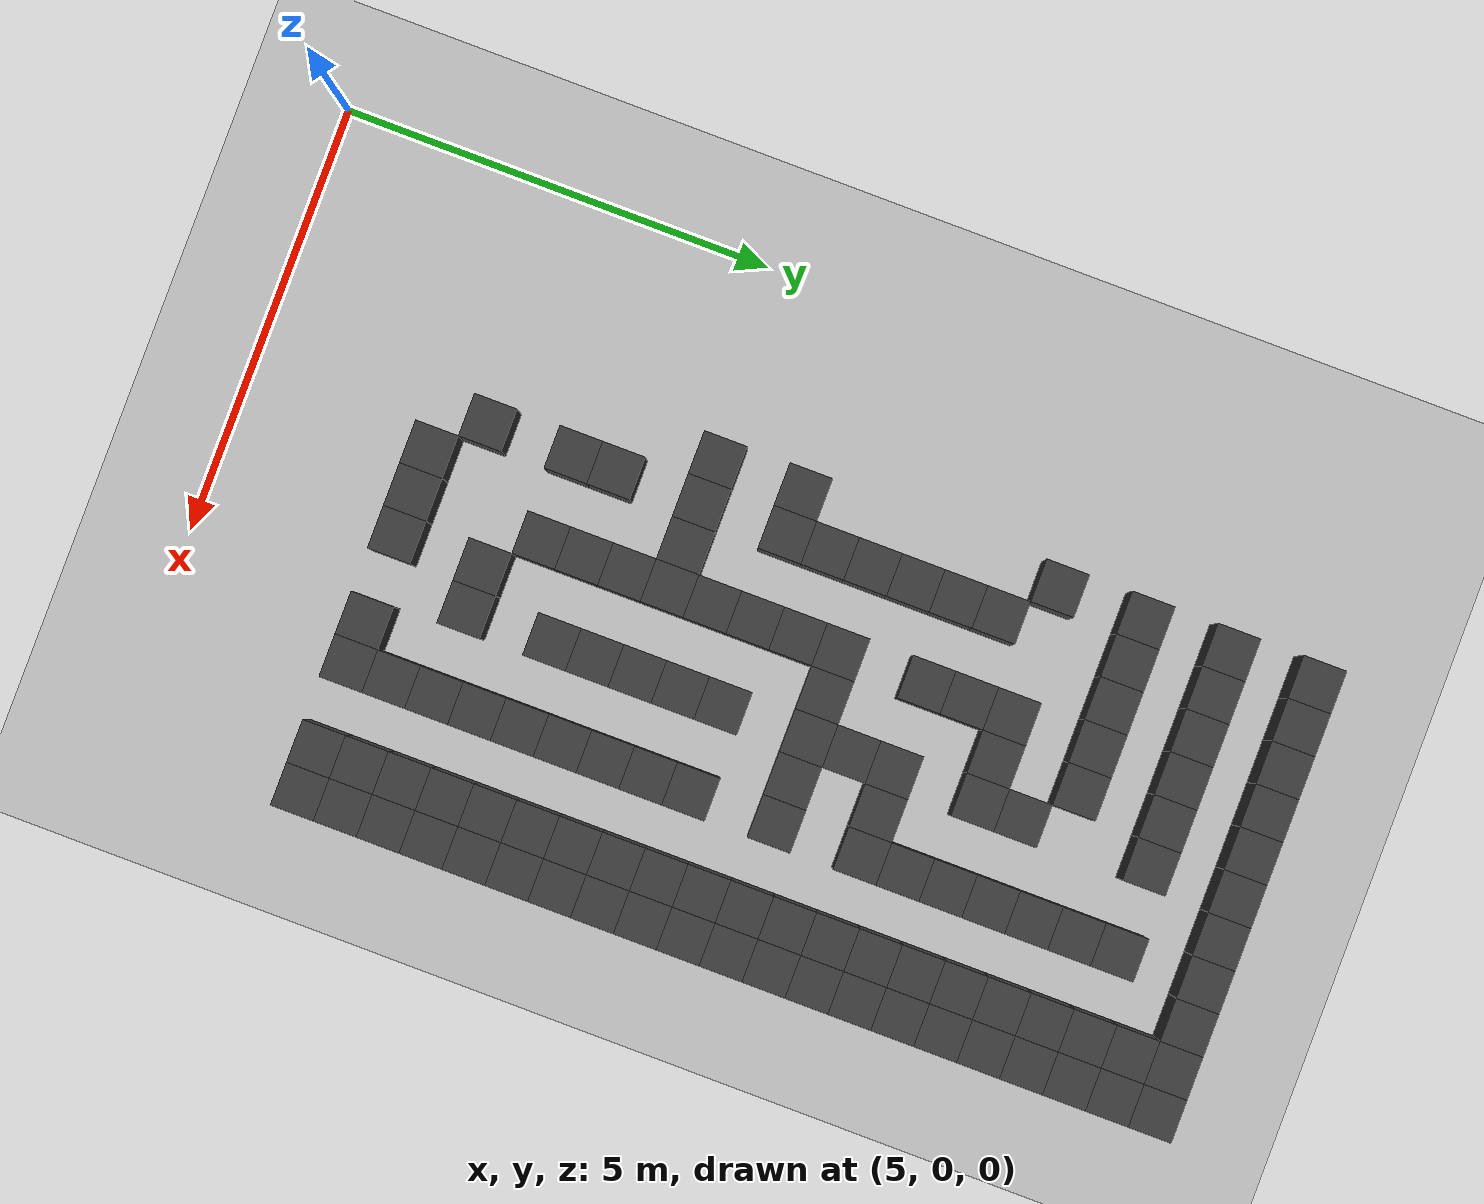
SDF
<sdf version="1.7">
 <world name="map_16603">
  <model name="ground_plane">
   <static>true</static>
   <link name="link">
    <collision name="collision">
     <geometry><plane><normal>0 0 1</normal><size>200 200</size></plane></geometry>
    </collision>
    <visual name="visual">
     <geometry><plane><normal>0 0 1</normal><size>200 200</size></plane></geometry>
     <material><ambient>0.8 0.8 0.8 1</ambient><diffuse>0.8 0.8 0.8 1</diffuse></material>
    </visual>
   </link>
  </model>
  <model name="maze_environment">
   <static>true</static>
   <link name="wall_39">
    <pose>7.250 12.250 0.500 0 0 0</pose>
    <collision name="col"><geometry><box><size>0.5 0.5 1.0</size></box></geometry></collision>
    <visual name="vis">
     <geometry><box><size>0.5 0.5 1.0</size></box></geometry>
     <material><ambient>0.15 0.15 0.15 1</ambient><diffuse>0.25 0.25 0.25 1</diffuse></material>
    </visual>
   </link>
   <link name="wall_40">
    <pose>7.750 12.250 0.500 0 0 0</pose>
    <collision name="col"><geometry><box><size>0.5 0.5 1.0</size></box></geometry></collision>
    <visual name="vis">
     <geometry><box><size>0.5 0.5 1.0</size></box></geometry>
     <material><ambient>0.15 0.15 0.15 1</ambient><diffuse>0.25 0.25 0.25 1</diffuse></material>
    </visual>
   </link>
   <link name="wall_41">
    <pose>8.250 12.250 0.500 0 0 0</pose>
    <collision name="col"><geometry><box><size>0.5 0.5 1.0</size></box></geometry></collision>
    <visual name="vis">
     <geometry><box><size>0.5 0.5 1.0</size></box></geometry>
     <material><ambient>0.15 0.15 0.15 1</ambient><diffuse>0.25 0.25 0.25 1</diffuse></material>
    </visual>
   </link>
   <link name="wall_42">
    <pose>8.750 12.250 0.500 0 0 0</pose>
    <collision name="col"><geometry><box><size>0.5 0.5 1.0</size></box></geometry></collision>
    <visual name="vis">
     <geometry><box><size>0.5 0.5 1.0</size></box></geometry>
     <material><ambient>0.15 0.15 0.15 1</ambient><diffuse>0.25 0.25 0.25 1</diffuse></material>
    </visual>
   </link>
   <link name="wall_43">
    <pose>9.250 12.250 0.500 0 0 0</pose>
    <collision name="col"><geometry><box><size>0.5 0.5 1.0</size></box></geometry></collision>
    <visual name="vis">
     <geometry><box><size>0.5 0.5 1.0</size></box></geometry>
     <material><ambient>0.15 0.15 0.15 1</ambient><diffuse>0.25 0.25 0.25 1</diffuse></material>
    </visual>
   </link>
   <link name="wall_44">
    <pose>9.750 12.250 0.500 0 0 0</pose>
    <collision name="col"><geometry><box><size>0.5 0.5 1.0</size></box></geometry></collision>
    <visual name="vis">
     <geometry><box><size>0.5 0.5 1.0</size></box></geometry>
     <material><ambient>0.15 0.15 0.15 1</ambient><diffuse>0.25 0.25 0.25 1</diffuse></material>
    </visual>
   </link>
   <link name="wall_45">
    <pose>10.250 12.250 0.500 0 0 0</pose>
    <collision name="col"><geometry><box><size>0.5 0.5 1.0</size></box></geometry></collision>
    <visual name="vis">
     <geometry><box><size>0.5 0.5 1.0</size></box></geometry>
     <material><ambient>0.15 0.15 0.15 1</ambient><diffuse>0.25 0.25 0.25 1</diffuse></material>
    </visual>
   </link>
   <link name="wall_46">
    <pose>10.750 12.250 0.500 0 0 0</pose>
    <collision name="col"><geometry><box><size>0.5 0.5 1.0</size></box></geometry></collision>
    <visual name="vis">
     <geometry><box><size>0.5 0.5 1.0</size></box></geometry>
     <material><ambient>0.15 0.15 0.15 1</ambient><diffuse>0.25 0.25 0.25 1</diffuse></material>
    </visual>
   </link>
   <link name="wall_47">
    <pose>11.250 12.250 0.500 0 0 0</pose>
    <collision name="col"><geometry><box><size>0.5 0.5 1.0</size></box></geometry></collision>
    <visual name="vis">
     <geometry><box><size>0.5 0.5 1.0</size></box></geometry>
     <material><ambient>0.15 0.15 0.15 1</ambient><diffuse>0.25 0.25 0.25 1</diffuse></material>
    </visual>
   </link>
   <link name="wall_48">
    <pose>11.750 12.250 0.500 0 0 0</pose>
    <collision name="col"><geometry><box><size>0.5 0.5 1.0</size></box></geometry></collision>
    <visual name="vis">
     <geometry><box><size>0.5 0.5 1.0</size></box></geometry>
     <material><ambient>0.15 0.15 0.15 1</ambient><diffuse>0.25 0.25 0.25 1</diffuse></material>
    </visual>
   </link>
   <link name="wall_49">
    <pose>12.250 12.250 0.500 0 0 0</pose>
    <collision name="col"><geometry><box><size>0.5 0.5 1.0</size></box></geometry></collision>
    <visual name="vis">
     <geometry><box><size>0.5 0.5 1.0</size></box></geometry>
     <material><ambient>0.15 0.15 0.15 1</ambient><diffuse>0.25 0.25 0.25 1</diffuse></material>
    </visual>
   </link>
   <link name="wall_56">
    <pose>11.750 11.750 0.500 0 0 0</pose>
    <collision name="col"><geometry><box><size>0.5 0.5 1.0</size></box></geometry></collision>
    <visual name="vis">
     <geometry><box><size>0.5 0.5 1.0</size></box></geometry>
     <material><ambient>0.15 0.15 0.15 1</ambient><diffuse>0.25 0.25 0.25 1</diffuse></material>
    </visual>
   </link>
   <link name="wall_57">
    <pose>12.250 11.750 0.500 0 0 0</pose>
    <collision name="col"><geometry><box><size>0.5 0.5 1.0</size></box></geometry></collision>
    <visual name="vis">
     <geometry><box><size>0.5 0.5 1.0</size></box></geometry>
     <material><ambient>0.15 0.15 0.15 1</ambient><diffuse>0.25 0.25 0.25 1</diffuse></material>
    </visual>
   </link>
   <link name="wall_85">
    <pose>7.250 11.250 0.500 0 0 0</pose>
    <collision name="col"><geometry><box><size>0.5 0.5 1.0</size></box></geometry></collision>
    <visual name="vis">
     <geometry><box><size>0.5 0.5 1.0</size></box></geometry>
     <material><ambient>0.15 0.15 0.15 1</ambient><diffuse>0.25 0.25 0.25 1</diffuse></material>
    </visual>
   </link>
   <link name="wall_86">
    <pose>7.750 11.250 0.500 0 0 0</pose>
    <collision name="col"><geometry><box><size>0.5 0.5 1.0</size></box></geometry></collision>
    <visual name="vis">
     <geometry><box><size>0.5 0.5 1.0</size></box></geometry>
     <material><ambient>0.15 0.15 0.15 1</ambient><diffuse>0.25 0.25 0.25 1</diffuse></material>
    </visual>
   </link>
   <link name="wall_87">
    <pose>8.250 11.250 0.500 0 0 0</pose>
    <collision name="col"><geometry><box><size>0.5 0.5 1.0</size></box></geometry></collision>
    <visual name="vis">
     <geometry><box><size>0.5 0.5 1.0</size></box></geometry>
     <material><ambient>0.15 0.15 0.15 1</ambient><diffuse>0.25 0.25 0.25 1</diffuse></material>
    </visual>
   </link>
   <link name="wall_88">
    <pose>8.750 11.250 0.500 0 0 0</pose>
    <collision name="col"><geometry><box><size>0.5 0.5 1.0</size></box></geometry></collision>
    <visual name="vis">
     <geometry><box><size>0.5 0.5 1.0</size></box></geometry>
     <material><ambient>0.15 0.15 0.15 1</ambient><diffuse>0.25 0.25 0.25 1</diffuse></material>
    </visual>
   </link>
   <link name="wall_89">
    <pose>9.250 11.250 0.500 0 0 0</pose>
    <collision name="col"><geometry><box><size>0.5 0.5 1.0</size></box></geometry></collision>
    <visual name="vis">
     <geometry><box><size>0.5 0.5 1.0</size></box></geometry>
     <material><ambient>0.15 0.15 0.15 1</ambient><diffuse>0.25 0.25 0.25 1</diffuse></material>
    </visual>
   </link>
   <link name="wall_90">
    <pose>9.750 11.250 0.500 0 0 0</pose>
    <collision name="col"><geometry><box><size>0.5 0.5 1.0</size></box></geometry></collision>
    <visual name="vis">
     <geometry><box><size>0.5 0.5 1.0</size></box></geometry>
     <material><ambient>0.15 0.15 0.15 1</ambient><diffuse>0.25 0.25 0.25 1</diffuse></material>
    </visual>
   </link>
   <link name="wall_91">
    <pose>10.750 11.250 0.500 0 0 0</pose>
    <collision name="col"><geometry><box><size>0.5 0.5 1.0</size></box></geometry></collision>
    <visual name="vis">
     <geometry><box><size>0.5 0.5 1.0</size></box></geometry>
     <material><ambient>0.15 0.15 0.15 1</ambient><diffuse>0.25 0.25 0.25 1</diffuse></material>
    </visual>
   </link>
   <link name="wall_92">
    <pose>11.750 11.250 0.500 0 0 0</pose>
    <collision name="col"><geometry><box><size>0.5 0.5 1.0</size></box></geometry></collision>
    <visual name="vis">
     <geometry><box><size>0.5 0.5 1.0</size></box></geometry>
     <material><ambient>0.15 0.15 0.15 1</ambient><diffuse>0.25 0.25 0.25 1</diffuse></material>
    </visual>
   </link>
   <link name="wall_93">
    <pose>12.250 11.250 0.500 0 0 0</pose>
    <collision name="col"><geometry><box><size>0.5 0.5 1.0</size></box></geometry></collision>
    <visual name="vis">
     <geometry><box><size>0.5 0.5 1.0</size></box></geometry>
     <material><ambient>0.15 0.15 0.15 1</ambient><diffuse>0.25 0.25 0.25 1</diffuse></material>
    </visual>
   </link>
   <link name="wall_103">
    <pose>10.750 10.750 0.500 0 0 0</pose>
    <collision name="col"><geometry><box><size>0.5 0.5 1.0</size></box></geometry></collision>
    <visual name="vis">
     <geometry><box><size>0.5 0.5 1.0</size></box></geometry>
     <material><ambient>0.15 0.15 0.15 1</ambient><diffuse>0.25 0.25 0.25 1</diffuse></material>
    </visual>
   </link>
   <link name="wall_104">
    <pose>11.750 10.750 0.500 0 0 0</pose>
    <collision name="col"><geometry><box><size>0.5 0.5 1.0</size></box></geometry></collision>
    <visual name="vis">
     <geometry><box><size>0.5 0.5 1.0</size></box></geometry>
     <material><ambient>0.15 0.15 0.15 1</ambient><diffuse>0.25 0.25 0.25 1</diffuse></material>
    </visual>
   </link>
   <link name="wall_105">
    <pose>12.250 10.750 0.500 0 0 0</pose>
    <collision name="col"><geometry><box><size>0.5 0.5 1.0</size></box></geometry></collision>
    <visual name="vis">
     <geometry><box><size>0.5 0.5 1.0</size></box></geometry>
     <material><ambient>0.15 0.15 0.15 1</ambient><diffuse>0.25 0.25 0.25 1</diffuse></material>
    </visual>
   </link>
   <link name="wall_130">
    <pose>7.250 10.250 0.500 0 0 0</pose>
    <collision name="col"><geometry><box><size>0.5 0.5 1.0</size></box></geometry></collision>
    <visual name="vis">
     <geometry><box><size>0.5 0.5 1.0</size></box></geometry>
     <material><ambient>0.15 0.15 0.15 1</ambient><diffuse>0.25 0.25 0.25 1</diffuse></material>
    </visual>
   </link>
   <link name="wall_131">
    <pose>7.750 10.250 0.500 0 0 0</pose>
    <collision name="col"><geometry><box><size>0.5 0.5 1.0</size></box></geometry></collision>
    <visual name="vis">
     <geometry><box><size>0.5 0.5 1.0</size></box></geometry>
     <material><ambient>0.15 0.15 0.15 1</ambient><diffuse>0.25 0.25 0.25 1</diffuse></material>
    </visual>
   </link>
   <link name="wall_132">
    <pose>8.250 10.250 0.500 0 0 0</pose>
    <collision name="col"><geometry><box><size>0.5 0.5 1.0</size></box></geometry></collision>
    <visual name="vis">
     <geometry><box><size>0.5 0.5 1.0</size></box></geometry>
     <material><ambient>0.15 0.15 0.15 1</ambient><diffuse>0.25 0.25 0.25 1</diffuse></material>
    </visual>
   </link>
   <link name="wall_133">
    <pose>8.750 10.250 0.500 0 0 0</pose>
    <collision name="col"><geometry><box><size>0.5 0.5 1.0</size></box></geometry></collision>
    <visual name="vis">
     <geometry><box><size>0.5 0.5 1.0</size></box></geometry>
     <material><ambient>0.15 0.15 0.15 1</ambient><diffuse>0.25 0.25 0.25 1</diffuse></material>
    </visual>
   </link>
   <link name="wall_134">
    <pose>9.250 10.250 0.500 0 0 0</pose>
    <collision name="col"><geometry><box><size>0.5 0.5 1.0</size></box></geometry></collision>
    <visual name="vis">
     <geometry><box><size>0.5 0.5 1.0</size></box></geometry>
     <material><ambient>0.15 0.15 0.15 1</ambient><diffuse>0.25 0.25 0.25 1</diffuse></material>
    </visual>
   </link>
   <link name="wall_135">
    <pose>10.750 10.250 0.500 0 0 0</pose>
    <collision name="col"><geometry><box><size>0.5 0.5 1.0</size></box></geometry></collision>
    <visual name="vis">
     <geometry><box><size>0.5 0.5 1.0</size></box></geometry>
     <material><ambient>0.15 0.15 0.15 1</ambient><diffuse>0.25 0.25 0.25 1</diffuse></material>
    </visual>
   </link>
   <link name="wall_136">
    <pose>11.750 10.250 0.500 0 0 0</pose>
    <collision name="col"><geometry><box><size>0.5 0.5 1.0</size></box></geometry></collision>
    <visual name="vis">
     <geometry><box><size>0.5 0.5 1.0</size></box></geometry>
     <material><ambient>0.15 0.15 0.15 1</ambient><diffuse>0.25 0.25 0.25 1</diffuse></material>
    </visual>
   </link>
   <link name="wall_137">
    <pose>12.250 10.250 0.500 0 0 0</pose>
    <collision name="col"><geometry><box><size>0.5 0.5 1.0</size></box></geometry></collision>
    <visual name="vis">
     <geometry><box><size>0.5 0.5 1.0</size></box></geometry>
     <material><ambient>0.15 0.15 0.15 1</ambient><diffuse>0.25 0.25 0.25 1</diffuse></material>
    </visual>
   </link>
   <link name="wall_148">
    <pose>9.750 9.750 0.500 0 0 0</pose>
    <collision name="col"><geometry><box><size>0.5 0.5 1.0</size></box></geometry></collision>
    <visual name="vis">
     <geometry><box><size>0.5 0.5 1.0</size></box></geometry>
     <material><ambient>0.15 0.15 0.15 1</ambient><diffuse>0.25 0.25 0.25 1</diffuse></material>
    </visual>
   </link>
   <link name="wall_149">
    <pose>10.750 9.750 0.500 0 0 0</pose>
    <collision name="col"><geometry><box><size>0.5 0.5 1.0</size></box></geometry></collision>
    <visual name="vis">
     <geometry><box><size>0.5 0.5 1.0</size></box></geometry>
     <material><ambient>0.15 0.15 0.15 1</ambient><diffuse>0.25 0.25 0.25 1</diffuse></material>
    </visual>
   </link>
   <link name="wall_150">
    <pose>11.750 9.750 0.500 0 0 0</pose>
    <collision name="col"><geometry><box><size>0.5 0.5 1.0</size></box></geometry></collision>
    <visual name="vis">
     <geometry><box><size>0.5 0.5 1.0</size></box></geometry>
     <material><ambient>0.15 0.15 0.15 1</ambient><diffuse>0.25 0.25 0.25 1</diffuse></material>
    </visual>
   </link>
   <link name="wall_151">
    <pose>12.250 9.750 0.500 0 0 0</pose>
    <collision name="col"><geometry><box><size>0.5 0.5 1.0</size></box></geometry></collision>
    <visual name="vis">
     <geometry><box><size>0.5 0.5 1.0</size></box></geometry>
     <material><ambient>0.15 0.15 0.15 1</ambient><diffuse>0.25 0.25 0.25 1</diffuse></material>
    </visual>
   </link>
   <link name="wall_177">
    <pose>7.250 9.250 0.500 0 0 0</pose>
    <collision name="col"><geometry><box><size>0.5 0.5 1.0</size></box></geometry></collision>
    <visual name="vis">
     <geometry><box><size>0.5 0.5 1.0</size></box></geometry>
     <material><ambient>0.15 0.15 0.15 1</ambient><diffuse>0.25 0.25 0.25 1</diffuse></material>
    </visual>
   </link>
   <link name="wall_178">
    <pose>8.750 9.250 0.500 0 0 0</pose>
    <collision name="col"><geometry><box><size>0.5 0.5 1.0</size></box></geometry></collision>
    <visual name="vis">
     <geometry><box><size>0.5 0.5 1.0</size></box></geometry>
     <material><ambient>0.15 0.15 0.15 1</ambient><diffuse>0.25 0.25 0.25 1</diffuse></material>
    </visual>
   </link>
   <link name="wall_179">
    <pose>9.250 9.250 0.500 0 0 0</pose>
    <collision name="col"><geometry><box><size>0.5 0.5 1.0</size></box></geometry></collision>
    <visual name="vis">
     <geometry><box><size>0.5 0.5 1.0</size></box></geometry>
     <material><ambient>0.15 0.15 0.15 1</ambient><diffuse>0.25 0.25 0.25 1</diffuse></material>
    </visual>
   </link>
   <link name="wall_180">
    <pose>9.750 9.250 0.500 0 0 0</pose>
    <collision name="col"><geometry><box><size>0.5 0.5 1.0</size></box></geometry></collision>
    <visual name="vis">
     <geometry><box><size>0.5 0.5 1.0</size></box></geometry>
     <material><ambient>0.15 0.15 0.15 1</ambient><diffuse>0.25 0.25 0.25 1</diffuse></material>
    </visual>
   </link>
   <link name="wall_181">
    <pose>10.750 9.250 0.500 0 0 0</pose>
    <collision name="col"><geometry><box><size>0.5 0.5 1.0</size></box></geometry></collision>
    <visual name="vis">
     <geometry><box><size>0.5 0.5 1.0</size></box></geometry>
     <material><ambient>0.15 0.15 0.15 1</ambient><diffuse>0.25 0.25 0.25 1</diffuse></material>
    </visual>
   </link>
   <link name="wall_182">
    <pose>11.750 9.250 0.500 0 0 0</pose>
    <collision name="col"><geometry><box><size>0.5 0.5 1.0</size></box></geometry></collision>
    <visual name="vis">
     <geometry><box><size>0.5 0.5 1.0</size></box></geometry>
     <material><ambient>0.15 0.15 0.15 1</ambient><diffuse>0.25 0.25 0.25 1</diffuse></material>
    </visual>
   </link>
   <link name="wall_183">
    <pose>12.250 9.250 0.500 0 0 0</pose>
    <collision name="col"><geometry><box><size>0.5 0.5 1.0</size></box></geometry></collision>
    <visual name="vis">
     <geometry><box><size>0.5 0.5 1.0</size></box></geometry>
     <material><ambient>0.15 0.15 0.15 1</ambient><diffuse>0.25 0.25 0.25 1</diffuse></material>
    </visual>
   </link>
   <link name="wall_196">
    <pose>7.750 8.750 0.500 0 0 0</pose>
    <collision name="col"><geometry><box><size>0.5 0.5 1.0</size></box></geometry></collision>
    <visual name="vis">
     <geometry><box><size>0.5 0.5 1.0</size></box></geometry>
     <material><ambient>0.15 0.15 0.15 1</ambient><diffuse>0.25 0.25 0.25 1</diffuse></material>
    </visual>
   </link>
   <link name="wall_197">
    <pose>8.750 8.750 0.500 0 0 0</pose>
    <collision name="col"><geometry><box><size>0.5 0.5 1.0</size></box></geometry></collision>
    <visual name="vis">
     <geometry><box><size>0.5 0.5 1.0</size></box></geometry>
     <material><ambient>0.15 0.15 0.15 1</ambient><diffuse>0.25 0.25 0.25 1</diffuse></material>
    </visual>
   </link>
   <link name="wall_198">
    <pose>10.750 8.750 0.500 0 0 0</pose>
    <collision name="col"><geometry><box><size>0.5 0.5 1.0</size></box></geometry></collision>
    <visual name="vis">
     <geometry><box><size>0.5 0.5 1.0</size></box></geometry>
     <material><ambient>0.15 0.15 0.15 1</ambient><diffuse>0.25 0.25 0.25 1</diffuse></material>
    </visual>
   </link>
   <link name="wall_199">
    <pose>11.750 8.750 0.500 0 0 0</pose>
    <collision name="col"><geometry><box><size>0.5 0.5 1.0</size></box></geometry></collision>
    <visual name="vis">
     <geometry><box><size>0.5 0.5 1.0</size></box></geometry>
     <material><ambient>0.15 0.15 0.15 1</ambient><diffuse>0.25 0.25 0.25 1</diffuse></material>
    </visual>
   </link>
   <link name="wall_200">
    <pose>12.250 8.750 0.500 0 0 0</pose>
    <collision name="col"><geometry><box><size>0.5 0.5 1.0</size></box></geometry></collision>
    <visual name="vis">
     <geometry><box><size>0.5 0.5 1.0</size></box></geometry>
     <material><ambient>0.15 0.15 0.15 1</ambient><diffuse>0.25 0.25 0.25 1</diffuse></material>
    </visual>
   </link>
   <link name="wall_223">
    <pose>7.750 8.250 0.500 0 0 0</pose>
    <collision name="col"><geometry><box><size>0.5 0.5 1.0</size></box></geometry></collision>
    <visual name="vis">
     <geometry><box><size>0.5 0.5 1.0</size></box></geometry>
     <material><ambient>0.15 0.15 0.15 1</ambient><diffuse>0.25 0.25 0.25 1</diffuse></material>
    </visual>
   </link>
   <link name="wall_224">
    <pose>8.750 8.250 0.500 0 0 0</pose>
    <collision name="col"><geometry><box><size>0.5 0.5 1.0</size></box></geometry></collision>
    <visual name="vis">
     <geometry><box><size>0.5 0.5 1.0</size></box></geometry>
     <material><ambient>0.15 0.15 0.15 1</ambient><diffuse>0.25 0.25 0.25 1</diffuse></material>
    </visual>
   </link>
   <link name="wall_225">
    <pose>9.750 8.250 0.500 0 0 0</pose>
    <collision name="col"><geometry><box><size>0.5 0.5 1.0</size></box></geometry></collision>
    <visual name="vis">
     <geometry><box><size>0.5 0.5 1.0</size></box></geometry>
     <material><ambient>0.15 0.15 0.15 1</ambient><diffuse>0.25 0.25 0.25 1</diffuse></material>
    </visual>
   </link>
   <link name="wall_226">
    <pose>10.250 8.250 0.500 0 0 0</pose>
    <collision name="col"><geometry><box><size>0.5 0.5 1.0</size></box></geometry></collision>
    <visual name="vis">
     <geometry><box><size>0.5 0.5 1.0</size></box></geometry>
     <material><ambient>0.15 0.15 0.15 1</ambient><diffuse>0.25 0.25 0.25 1</diffuse></material>
    </visual>
   </link>
   <link name="wall_227">
    <pose>10.750 8.250 0.500 0 0 0</pose>
    <collision name="col"><geometry><box><size>0.5 0.5 1.0</size></box></geometry></collision>
    <visual name="vis">
     <geometry><box><size>0.5 0.5 1.0</size></box></geometry>
     <material><ambient>0.15 0.15 0.15 1</ambient><diffuse>0.25 0.25 0.25 1</diffuse></material>
    </visual>
   </link>
   <link name="wall_228">
    <pose>11.750 8.250 0.500 0 0 0</pose>
    <collision name="col"><geometry><box><size>0.5 0.5 1.0</size></box></geometry></collision>
    <visual name="vis">
     <geometry><box><size>0.5 0.5 1.0</size></box></geometry>
     <material><ambient>0.15 0.15 0.15 1</ambient><diffuse>0.25 0.25 0.25 1</diffuse></material>
    </visual>
   </link>
   <link name="wall_229">
    <pose>12.250 8.250 0.500 0 0 0</pose>
    <collision name="col"><geometry><box><size>0.5 0.5 1.0</size></box></geometry></collision>
    <visual name="vis">
     <geometry><box><size>0.5 0.5 1.0</size></box></geometry>
     <material><ambient>0.15 0.15 0.15 1</ambient><diffuse>0.25 0.25 0.25 1</diffuse></material>
    </visual>
   </link>
   <link name="wall_243">
    <pose>7.750 7.750 0.500 0 0 0</pose>
    <collision name="col"><geometry><box><size>0.5 0.5 1.0</size></box></geometry></collision>
    <visual name="vis">
     <geometry><box><size>0.5 0.5 1.0</size></box></geometry>
     <material><ambient>0.15 0.15 0.15 1</ambient><diffuse>0.25 0.25 0.25 1</diffuse></material>
    </visual>
   </link>
   <link name="wall_244">
    <pose>9.750 7.750 0.500 0 0 0</pose>
    <collision name="col"><geometry><box><size>0.5 0.5 1.0</size></box></geometry></collision>
    <visual name="vis">
     <geometry><box><size>0.5 0.5 1.0</size></box></geometry>
     <material><ambient>0.15 0.15 0.15 1</ambient><diffuse>0.25 0.25 0.25 1</diffuse></material>
    </visual>
   </link>
   <link name="wall_245">
    <pose>11.750 7.750 0.500 0 0 0</pose>
    <collision name="col"><geometry><box><size>0.5 0.5 1.0</size></box></geometry></collision>
    <visual name="vis">
     <geometry><box><size>0.5 0.5 1.0</size></box></geometry>
     <material><ambient>0.15 0.15 0.15 1</ambient><diffuse>0.25 0.25 0.25 1</diffuse></material>
    </visual>
   </link>
   <link name="wall_246">
    <pose>12.250 7.750 0.500 0 0 0</pose>
    <collision name="col"><geometry><box><size>0.5 0.5 1.0</size></box></geometry></collision>
    <visual name="vis">
     <geometry><box><size>0.5 0.5 1.0</size></box></geometry>
     <material><ambient>0.15 0.15 0.15 1</ambient><diffuse>0.25 0.25 0.25 1</diffuse></material>
    </visual>
   </link>
   <link name="wall_276">
    <pose>7.750 7.250 0.500 0 0 0</pose>
    <collision name="col"><geometry><box><size>0.5 0.5 1.0</size></box></geometry></collision>
    <visual name="vis">
     <geometry><box><size>0.5 0.5 1.0</size></box></geometry>
     <material><ambient>0.15 0.15 0.15 1</ambient><diffuse>0.25 0.25 0.25 1</diffuse></material>
    </visual>
   </link>
   <link name="wall_277">
    <pose>8.750 7.250 0.500 0 0 0</pose>
    <collision name="col"><geometry><box><size>0.5 0.5 1.0</size></box></geometry></collision>
    <visual name="vis">
     <geometry><box><size>0.5 0.5 1.0</size></box></geometry>
     <material><ambient>0.15 0.15 0.15 1</ambient><diffuse>0.25 0.25 0.25 1</diffuse></material>
    </visual>
   </link>
   <link name="wall_278">
    <pose>9.250 7.250 0.500 0 0 0</pose>
    <collision name="col"><geometry><box><size>0.5 0.5 1.0</size></box></geometry></collision>
    <visual name="vis">
     <geometry><box><size>0.5 0.5 1.0</size></box></geometry>
     <material><ambient>0.15 0.15 0.15 1</ambient><diffuse>0.25 0.25 0.25 1</diffuse></material>
    </visual>
   </link>
   <link name="wall_279">
    <pose>9.750 7.250 0.500 0 0 0</pose>
    <collision name="col"><geometry><box><size>0.5 0.5 1.0</size></box></geometry></collision>
    <visual name="vis">
     <geometry><box><size>0.5 0.5 1.0</size></box></geometry>
     <material><ambient>0.15 0.15 0.15 1</ambient><diffuse>0.25 0.25 0.25 1</diffuse></material>
    </visual>
   </link>
   <link name="wall_280">
    <pose>10.250 7.250 0.500 0 0 0</pose>
    <collision name="col"><geometry><box><size>0.5 0.5 1.0</size></box></geometry></collision>
    <visual name="vis">
     <geometry><box><size>0.5 0.5 1.0</size></box></geometry>
     <material><ambient>0.15 0.15 0.15 1</ambient><diffuse>0.25 0.25 0.25 1</diffuse></material>
    </visual>
   </link>
   <link name="wall_281">
    <pose>10.750 7.250 0.500 0 0 0</pose>
    <collision name="col"><geometry><box><size>0.5 0.5 1.0</size></box></geometry></collision>
    <visual name="vis">
     <geometry><box><size>0.5 0.5 1.0</size></box></geometry>
     <material><ambient>0.15 0.15 0.15 1</ambient><diffuse>0.25 0.25 0.25 1</diffuse></material>
    </visual>
   </link>
   <link name="wall_282">
    <pose>11.750 7.250 0.500 0 0 0</pose>
    <collision name="col"><geometry><box><size>0.5 0.5 1.0</size></box></geometry></collision>
    <visual name="vis">
     <geometry><box><size>0.5 0.5 1.0</size></box></geometry>
     <material><ambient>0.15 0.15 0.15 1</ambient><diffuse>0.25 0.25 0.25 1</diffuse></material>
    </visual>
   </link>
   <link name="wall_283">
    <pose>12.250 7.250 0.500 0 0 0</pose>
    <collision name="col"><geometry><box><size>0.5 0.5 1.0</size></box></geometry></collision>
    <visual name="vis">
     <geometry><box><size>0.5 0.5 1.0</size></box></geometry>
     <material><ambient>0.15 0.15 0.15 1</ambient><diffuse>0.25 0.25 0.25 1</diffuse></material>
    </visual>
   </link>
   <link name="wall_295">
    <pose>7.750 6.750 0.500 0 0 0</pose>
    <collision name="col"><geometry><box><size>0.5 0.5 1.0</size></box></geometry></collision>
    <visual name="vis">
     <geometry><box><size>0.5 0.5 1.0</size></box></geometry>
     <material><ambient>0.15 0.15 0.15 1</ambient><diffuse>0.25 0.25 0.25 1</diffuse></material>
    </visual>
   </link>
   <link name="wall_296">
    <pose>8.750 6.750 0.500 0 0 0</pose>
    <collision name="col"><geometry><box><size>0.5 0.5 1.0</size></box></geometry></collision>
    <visual name="vis">
     <geometry><box><size>0.5 0.5 1.0</size></box></geometry>
     <material><ambient>0.15 0.15 0.15 1</ambient><diffuse>0.25 0.25 0.25 1</diffuse></material>
    </visual>
   </link>
   <link name="wall_297">
    <pose>11.750 6.750 0.500 0 0 0</pose>
    <collision name="col"><geometry><box><size>0.5 0.5 1.0</size></box></geometry></collision>
    <visual name="vis">
     <geometry><box><size>0.5 0.5 1.0</size></box></geometry>
     <material><ambient>0.15 0.15 0.15 1</ambient><diffuse>0.25 0.25 0.25 1</diffuse></material>
    </visual>
   </link>
   <link name="wall_298">
    <pose>12.250 6.750 0.500 0 0 0</pose>
    <collision name="col"><geometry><box><size>0.5 0.5 1.0</size></box></geometry></collision>
    <visual name="vis">
     <geometry><box><size>0.5 0.5 1.0</size></box></geometry>
     <material><ambient>0.15 0.15 0.15 1</ambient><diffuse>0.25 0.25 0.25 1</diffuse></material>
    </visual>
   </link>
   <link name="wall_323">
    <pose>7.250 6.250 0.500 0 0 0</pose>
    <collision name="col"><geometry><box><size>0.5 0.5 1.0</size></box></geometry></collision>
    <visual name="vis">
     <geometry><box><size>0.5 0.5 1.0</size></box></geometry>
     <material><ambient>0.15 0.15 0.15 1</ambient><diffuse>0.25 0.25 0.25 1</diffuse></material>
    </visual>
   </link>
   <link name="wall_324">
    <pose>7.750 6.250 0.500 0 0 0</pose>
    <collision name="col"><geometry><box><size>0.5 0.5 1.0</size></box></geometry></collision>
    <visual name="vis">
     <geometry><box><size>0.5 0.5 1.0</size></box></geometry>
     <material><ambient>0.15 0.15 0.15 1</ambient><diffuse>0.25 0.25 0.25 1</diffuse></material>
    </visual>
   </link>
   <link name="wall_325">
    <pose>8.750 6.250 0.500 0 0 0</pose>
    <collision name="col"><geometry><box><size>0.5 0.5 1.0</size></box></geometry></collision>
    <visual name="vis">
     <geometry><box><size>0.5 0.5 1.0</size></box></geometry>
     <material><ambient>0.15 0.15 0.15 1</ambient><diffuse>0.25 0.25 0.25 1</diffuse></material>
    </visual>
   </link>
   <link name="wall_326">
    <pose>9.750 6.250 0.500 0 0 0</pose>
    <collision name="col"><geometry><box><size>0.5 0.5 1.0</size></box></geometry></collision>
    <visual name="vis">
     <geometry><box><size>0.5 0.5 1.0</size></box></geometry>
     <material><ambient>0.15 0.15 0.15 1</ambient><diffuse>0.25 0.25 0.25 1</diffuse></material>
    </visual>
   </link>
   <link name="wall_327">
    <pose>10.750 6.250 0.500 0 0 0</pose>
    <collision name="col"><geometry><box><size>0.5 0.5 1.0</size></box></geometry></collision>
    <visual name="vis">
     <geometry><box><size>0.5 0.5 1.0</size></box></geometry>
     <material><ambient>0.15 0.15 0.15 1</ambient><diffuse>0.25 0.25 0.25 1</diffuse></material>
    </visual>
   </link>
   <link name="wall_328">
    <pose>11.750 6.250 0.500 0 0 0</pose>
    <collision name="col"><geometry><box><size>0.5 0.5 1.0</size></box></geometry></collision>
    <visual name="vis">
     <geometry><box><size>0.5 0.5 1.0</size></box></geometry>
     <material><ambient>0.15 0.15 0.15 1</ambient><diffuse>0.25 0.25 0.25 1</diffuse></material>
    </visual>
   </link>
   <link name="wall_329">
    <pose>12.250 6.250 0.500 0 0 0</pose>
    <collision name="col"><geometry><box><size>0.5 0.5 1.0</size></box></geometry></collision>
    <visual name="vis">
     <geometry><box><size>0.5 0.5 1.0</size></box></geometry>
     <material><ambient>0.15 0.15 0.15 1</ambient><diffuse>0.25 0.25 0.25 1</diffuse></material>
    </visual>
   </link>
   <link name="wall_340">
    <pose>8.750 5.750 0.500 0 0 0</pose>
    <collision name="col"><geometry><box><size>0.5 0.5 1.0</size></box></geometry></collision>
    <visual name="vis">
     <geometry><box><size>0.5 0.5 1.0</size></box></geometry>
     <material><ambient>0.15 0.15 0.15 1</ambient><diffuse>0.25 0.25 0.25 1</diffuse></material>
    </visual>
   </link>
   <link name="wall_341">
    <pose>9.750 5.750 0.500 0 0 0</pose>
    <collision name="col"><geometry><box><size>0.5 0.5 1.0</size></box></geometry></collision>
    <visual name="vis">
     <geometry><box><size>0.5 0.5 1.0</size></box></geometry>
     <material><ambient>0.15 0.15 0.15 1</ambient><diffuse>0.25 0.25 0.25 1</diffuse></material>
    </visual>
   </link>
   <link name="wall_342">
    <pose>10.750 5.750 0.500 0 0 0</pose>
    <collision name="col"><geometry><box><size>0.5 0.5 1.0</size></box></geometry></collision>
    <visual name="vis">
     <geometry><box><size>0.5 0.5 1.0</size></box></geometry>
     <material><ambient>0.15 0.15 0.15 1</ambient><diffuse>0.25 0.25 0.25 1</diffuse></material>
    </visual>
   </link>
   <link name="wall_343">
    <pose>11.750 5.750 0.500 0 0 0</pose>
    <collision name="col"><geometry><box><size>0.5 0.5 1.0</size></box></geometry></collision>
    <visual name="vis">
     <geometry><box><size>0.5 0.5 1.0</size></box></geometry>
     <material><ambient>0.15 0.15 0.15 1</ambient><diffuse>0.25 0.25 0.25 1</diffuse></material>
    </visual>
   </link>
   <link name="wall_344">
    <pose>12.250 5.750 0.500 0 0 0</pose>
    <collision name="col"><geometry><box><size>0.5 0.5 1.0</size></box></geometry></collision>
    <visual name="vis">
     <geometry><box><size>0.5 0.5 1.0</size></box></geometry>
     <material><ambient>0.15 0.15 0.15 1</ambient><diffuse>0.25 0.25 0.25 1</diffuse></material>
    </visual>
   </link>
   <link name="wall_375">
    <pose>7.250 5.250 0.500 0 0 0</pose>
    <collision name="col"><geometry><box><size>0.5 0.5 1.0</size></box></geometry></collision>
    <visual name="vis">
     <geometry><box><size>0.5 0.5 1.0</size></box></geometry>
     <material><ambient>0.15 0.15 0.15 1</ambient><diffuse>0.25 0.25 0.25 1</diffuse></material>
    </visual>
   </link>
   <link name="wall_376">
    <pose>7.750 5.250 0.500 0 0 0</pose>
    <collision name="col"><geometry><box><size>0.5 0.5 1.0</size></box></geometry></collision>
    <visual name="vis">
     <geometry><box><size>0.5 0.5 1.0</size></box></geometry>
     <material><ambient>0.15 0.15 0.15 1</ambient><diffuse>0.25 0.25 0.25 1</diffuse></material>
    </visual>
   </link>
   <link name="wall_377">
    <pose>8.250 5.250 0.500 0 0 0</pose>
    <collision name="col"><geometry><box><size>0.5 0.5 1.0</size></box></geometry></collision>
    <visual name="vis">
     <geometry><box><size>0.5 0.5 1.0</size></box></geometry>
     <material><ambient>0.15 0.15 0.15 1</ambient><diffuse>0.25 0.25 0.25 1</diffuse></material>
    </visual>
   </link>
   <link name="wall_378">
    <pose>8.750 5.250 0.500 0 0 0</pose>
    <collision name="col"><geometry><box><size>0.5 0.5 1.0</size></box></geometry></collision>
    <visual name="vis">
     <geometry><box><size>0.5 0.5 1.0</size></box></geometry>
     <material><ambient>0.15 0.15 0.15 1</ambient><diffuse>0.25 0.25 0.25 1</diffuse></material>
    </visual>
   </link>
   <link name="wall_379">
    <pose>9.750 5.250 0.500 0 0 0</pose>
    <collision name="col"><geometry><box><size>0.5 0.5 1.0</size></box></geometry></collision>
    <visual name="vis">
     <geometry><box><size>0.5 0.5 1.0</size></box></geometry>
     <material><ambient>0.15 0.15 0.15 1</ambient><diffuse>0.25 0.25 0.25 1</diffuse></material>
    </visual>
   </link>
   <link name="wall_380">
    <pose>10.750 5.250 0.500 0 0 0</pose>
    <collision name="col"><geometry><box><size>0.5 0.5 1.0</size></box></geometry></collision>
    <visual name="vis">
     <geometry><box><size>0.5 0.5 1.0</size></box></geometry>
     <material><ambient>0.15 0.15 0.15 1</ambient><diffuse>0.25 0.25 0.25 1</diffuse></material>
    </visual>
   </link>
   <link name="wall_381">
    <pose>11.750 5.250 0.500 0 0 0</pose>
    <collision name="col"><geometry><box><size>0.5 0.5 1.0</size></box></geometry></collision>
    <visual name="vis">
     <geometry><box><size>0.5 0.5 1.0</size></box></geometry>
     <material><ambient>0.15 0.15 0.15 1</ambient><diffuse>0.25 0.25 0.25 1</diffuse></material>
    </visual>
   </link>
   <link name="wall_382">
    <pose>12.250 5.250 0.500 0 0 0</pose>
    <collision name="col"><geometry><box><size>0.5 0.5 1.0</size></box></geometry></collision>
    <visual name="vis">
     <geometry><box><size>0.5 0.5 1.0</size></box></geometry>
     <material><ambient>0.15 0.15 0.15 1</ambient><diffuse>0.25 0.25 0.25 1</diffuse></material>
    </visual>
   </link>
   <link name="wall_390">
    <pose>8.750 4.750 0.500 0 0 0</pose>
    <collision name="col"><geometry><box><size>0.5 0.5 1.0</size></box></geometry></collision>
    <visual name="vis">
     <geometry><box><size>0.5 0.5 1.0</size></box></geometry>
     <material><ambient>0.15 0.15 0.15 1</ambient><diffuse>0.25 0.25 0.25 1</diffuse></material>
    </visual>
   </link>
   <link name="wall_391">
    <pose>9.750 4.750 0.500 0 0 0</pose>
    <collision name="col"><geometry><box><size>0.5 0.5 1.0</size></box></geometry></collision>
    <visual name="vis">
     <geometry><box><size>0.5 0.5 1.0</size></box></geometry>
     <material><ambient>0.15 0.15 0.15 1</ambient><diffuse>0.25 0.25 0.25 1</diffuse></material>
    </visual>
   </link>
   <link name="wall_392">
    <pose>10.750 4.750 0.500 0 0 0</pose>
    <collision name="col"><geometry><box><size>0.5 0.5 1.0</size></box></geometry></collision>
    <visual name="vis">
     <geometry><box><size>0.5 0.5 1.0</size></box></geometry>
     <material><ambient>0.15 0.15 0.15 1</ambient><diffuse>0.25 0.25 0.25 1</diffuse></material>
    </visual>
   </link>
   <link name="wall_393">
    <pose>11.750 4.750 0.500 0 0 0</pose>
    <collision name="col"><geometry><box><size>0.5 0.5 1.0</size></box></geometry></collision>
    <visual name="vis">
     <geometry><box><size>0.5 0.5 1.0</size></box></geometry>
     <material><ambient>0.15 0.15 0.15 1</ambient><diffuse>0.25 0.25 0.25 1</diffuse></material>
    </visual>
   </link>
   <link name="wall_394">
    <pose>12.250 4.750 0.500 0 0 0</pose>
    <collision name="col"><geometry><box><size>0.5 0.5 1.0</size></box></geometry></collision>
    <visual name="vis">
     <geometry><box><size>0.5 0.5 1.0</size></box></geometry>
     <material><ambient>0.15 0.15 0.15 1</ambient><diffuse>0.25 0.25 0.25 1</diffuse></material>
    </visual>
   </link>
   <link name="wall_419">
    <pose>7.750 4.250 0.500 0 0 0</pose>
    <collision name="col"><geometry><box><size>0.5 0.5 1.0</size></box></geometry></collision>
    <visual name="vis">
     <geometry><box><size>0.5 0.5 1.0</size></box></geometry>
     <material><ambient>0.15 0.15 0.15 1</ambient><diffuse>0.25 0.25 0.25 1</diffuse></material>
    </visual>
   </link>
   <link name="wall_420">
    <pose>8.750 4.250 0.500 0 0 0</pose>
    <collision name="col"><geometry><box><size>0.5 0.5 1.0</size></box></geometry></collision>
    <visual name="vis">
     <geometry><box><size>0.5 0.5 1.0</size></box></geometry>
     <material><ambient>0.15 0.15 0.15 1</ambient><diffuse>0.25 0.25 0.25 1</diffuse></material>
    </visual>
   </link>
   <link name="wall_421">
    <pose>9.750 4.250 0.500 0 0 0</pose>
    <collision name="col"><geometry><box><size>0.5 0.5 1.0</size></box></geometry></collision>
    <visual name="vis">
     <geometry><box><size>0.5 0.5 1.0</size></box></geometry>
     <material><ambient>0.15 0.15 0.15 1</ambient><diffuse>0.25 0.25 0.25 1</diffuse></material>
    </visual>
   </link>
   <link name="wall_422">
    <pose>10.750 4.250 0.500 0 0 0</pose>
    <collision name="col"><geometry><box><size>0.5 0.5 1.0</size></box></geometry></collision>
    <visual name="vis">
     <geometry><box><size>0.5 0.5 1.0</size></box></geometry>
     <material><ambient>0.15 0.15 0.15 1</ambient><diffuse>0.25 0.25 0.25 1</diffuse></material>
    </visual>
   </link>
   <link name="wall_423">
    <pose>11.750 4.250 0.500 0 0 0</pose>
    <collision name="col"><geometry><box><size>0.5 0.5 1.0</size></box></geometry></collision>
    <visual name="vis">
     <geometry><box><size>0.5 0.5 1.0</size></box></geometry>
     <material><ambient>0.15 0.15 0.15 1</ambient><diffuse>0.25 0.25 0.25 1</diffuse></material>
    </visual>
   </link>
   <link name="wall_424">
    <pose>12.250 4.250 0.500 0 0 0</pose>
    <collision name="col"><geometry><box><size>0.5 0.5 1.0</size></box></geometry></collision>
    <visual name="vis">
     <geometry><box><size>0.5 0.5 1.0</size></box></geometry>
     <material><ambient>0.15 0.15 0.15 1</ambient><diffuse>0.25 0.25 0.25 1</diffuse></material>
    </visual>
   </link>
   <link name="wall_434">
    <pose>7.750 3.750 0.500 0 0 0</pose>
    <collision name="col"><geometry><box><size>0.5 0.5 1.0</size></box></geometry></collision>
    <visual name="vis">
     <geometry><box><size>0.5 0.5 1.0</size></box></geometry>
     <material><ambient>0.15 0.15 0.15 1</ambient><diffuse>0.25 0.25 0.25 1</diffuse></material>
    </visual>
   </link>
   <link name="wall_435">
    <pose>8.750 3.750 0.500 0 0 0</pose>
    <collision name="col"><geometry><box><size>0.5 0.5 1.0</size></box></geometry></collision>
    <visual name="vis">
     <geometry><box><size>0.5 0.5 1.0</size></box></geometry>
     <material><ambient>0.15 0.15 0.15 1</ambient><diffuse>0.25 0.25 0.25 1</diffuse></material>
    </visual>
   </link>
   <link name="wall_436">
    <pose>10.750 3.750 0.500 0 0 0</pose>
    <collision name="col"><geometry><box><size>0.5 0.5 1.0</size></box></geometry></collision>
    <visual name="vis">
     <geometry><box><size>0.5 0.5 1.0</size></box></geometry>
     <material><ambient>0.15 0.15 0.15 1</ambient><diffuse>0.25 0.25 0.25 1</diffuse></material>
    </visual>
   </link>
   <link name="wall_437">
    <pose>11.750 3.750 0.500 0 0 0</pose>
    <collision name="col"><geometry><box><size>0.5 0.5 1.0</size></box></geometry></collision>
    <visual name="vis">
     <geometry><box><size>0.5 0.5 1.0</size></box></geometry>
     <material><ambient>0.15 0.15 0.15 1</ambient><diffuse>0.25 0.25 0.25 1</diffuse></material>
    </visual>
   </link>
   <link name="wall_438">
    <pose>12.250 3.750 0.500 0 0 0</pose>
    <collision name="col"><geometry><box><size>0.5 0.5 1.0</size></box></geometry></collision>
    <visual name="vis">
     <geometry><box><size>0.5 0.5 1.0</size></box></geometry>
     <material><ambient>0.15 0.15 0.15 1</ambient><diffuse>0.25 0.25 0.25 1</diffuse></material>
    </visual>
   </link>
   <link name="wall_467">
    <pose>9.250 3.250 0.500 0 0 0</pose>
    <collision name="col"><geometry><box><size>0.5 0.5 1.0</size></box></geometry></collision>
    <visual name="vis">
     <geometry><box><size>0.5 0.5 1.0</size></box></geometry>
     <material><ambient>0.15 0.15 0.15 1</ambient><diffuse>0.25 0.25 0.25 1</diffuse></material>
    </visual>
   </link>
   <link name="wall_468">
    <pose>9.750 3.250 0.500 0 0 0</pose>
    <collision name="col"><geometry><box><size>0.5 0.5 1.0</size></box></geometry></collision>
    <visual name="vis">
     <geometry><box><size>0.5 0.5 1.0</size></box></geometry>
     <material><ambient>0.15 0.15 0.15 1</ambient><diffuse>0.25 0.25 0.25 1</diffuse></material>
    </visual>
   </link>
   <link name="wall_469">
    <pose>10.750 3.250 0.500 0 0 0</pose>
    <collision name="col"><geometry><box><size>0.5 0.5 1.0</size></box></geometry></collision>
    <visual name="vis">
     <geometry><box><size>0.5 0.5 1.0</size></box></geometry>
     <material><ambient>0.15 0.15 0.15 1</ambient><diffuse>0.25 0.25 0.25 1</diffuse></material>
    </visual>
   </link>
   <link name="wall_470">
    <pose>11.750 3.250 0.500 0 0 0</pose>
    <collision name="col"><geometry><box><size>0.5 0.5 1.0</size></box></geometry></collision>
    <visual name="vis">
     <geometry><box><size>0.5 0.5 1.0</size></box></geometry>
     <material><ambient>0.15 0.15 0.15 1</ambient><diffuse>0.25 0.25 0.25 1</diffuse></material>
    </visual>
   </link>
   <link name="wall_471">
    <pose>12.250 3.250 0.500 0 0 0</pose>
    <collision name="col"><geometry><box><size>0.5 0.5 1.0</size></box></geometry></collision>
    <visual name="vis">
     <geometry><box><size>0.5 0.5 1.0</size></box></geometry>
     <material><ambient>0.15 0.15 0.15 1</ambient><diffuse>0.25 0.25 0.25 1</diffuse></material>
    </visual>
   </link>
   <link name="wall_480">
    <pose>7.750 2.750 0.500 0 0 0</pose>
    <collision name="col"><geometry><box><size>0.5 0.5 1.0</size></box></geometry></collision>
    <visual name="vis">
     <geometry><box><size>0.5 0.5 1.0</size></box></geometry>
     <material><ambient>0.15 0.15 0.15 1</ambient><diffuse>0.25 0.25 0.25 1</diffuse></material>
    </visual>
   </link>
   <link name="wall_481">
    <pose>10.750 2.750 0.500 0 0 0</pose>
    <collision name="col"><geometry><box><size>0.5 0.5 1.0</size></box></geometry></collision>
    <visual name="vis">
     <geometry><box><size>0.5 0.5 1.0</size></box></geometry>
     <material><ambient>0.15 0.15 0.15 1</ambient><diffuse>0.25 0.25 0.25 1</diffuse></material>
    </visual>
   </link>
   <link name="wall_482">
    <pose>11.750 2.750 0.500 0 0 0</pose>
    <collision name="col"><geometry><box><size>0.5 0.5 1.0</size></box></geometry></collision>
    <visual name="vis">
     <geometry><box><size>0.5 0.5 1.0</size></box></geometry>
     <material><ambient>0.15 0.15 0.15 1</ambient><diffuse>0.25 0.25 0.25 1</diffuse></material>
    </visual>
   </link>
   <link name="wall_483">
    <pose>12.250 2.750 0.500 0 0 0</pose>
    <collision name="col"><geometry><box><size>0.5 0.5 1.0</size></box></geometry></collision>
    <visual name="vis">
     <geometry><box><size>0.5 0.5 1.0</size></box></geometry>
     <material><ambient>0.15 0.15 0.15 1</ambient><diffuse>0.25 0.25 0.25 1</diffuse></material>
    </visual>
   </link>
   <link name="wall_512">
    <pose>8.250 2.250 0.500 0 0 0</pose>
    <collision name="col"><geometry><box><size>0.5 0.5 1.0</size></box></geometry></collision>
    <visual name="vis">
     <geometry><box><size>0.5 0.5 1.0</size></box></geometry>
     <material><ambient>0.15 0.15 0.15 1</ambient><diffuse>0.25 0.25 0.25 1</diffuse></material>
    </visual>
   </link>
   <link name="wall_513">
    <pose>8.750 2.250 0.500 0 0 0</pose>
    <collision name="col"><geometry><box><size>0.5 0.5 1.0</size></box></geometry></collision>
    <visual name="vis">
     <geometry><box><size>0.5 0.5 1.0</size></box></geometry>
     <material><ambient>0.15 0.15 0.15 1</ambient><diffuse>0.25 0.25 0.25 1</diffuse></material>
    </visual>
   </link>
   <link name="wall_514">
    <pose>9.250 2.250 0.500 0 0 0</pose>
    <collision name="col"><geometry><box><size>0.5 0.5 1.0</size></box></geometry></collision>
    <visual name="vis">
     <geometry><box><size>0.5 0.5 1.0</size></box></geometry>
     <material><ambient>0.15 0.15 0.15 1</ambient><diffuse>0.25 0.25 0.25 1</diffuse></material>
    </visual>
   </link>
   <link name="wall_515">
    <pose>10.250 2.250 0.500 0 0 0</pose>
    <collision name="col"><geometry><box><size>0.5 0.5 1.0</size></box></geometry></collision>
    <visual name="vis">
     <geometry><box><size>0.5 0.5 1.0</size></box></geometry>
     <material><ambient>0.15 0.15 0.15 1</ambient><diffuse>0.25 0.25 0.25 1</diffuse></material>
    </visual>
   </link>
   <link name="wall_516">
    <pose>10.750 2.250 0.500 0 0 0</pose>
    <collision name="col"><geometry><box><size>0.5 0.5 1.0</size></box></geometry></collision>
    <visual name="vis">
     <geometry><box><size>0.5 0.5 1.0</size></box></geometry>
     <material><ambient>0.15 0.15 0.15 1</ambient><diffuse>0.25 0.25 0.25 1</diffuse></material>
    </visual>
   </link>
   <link name="wall_517">
    <pose>11.750 2.250 0.500 0 0 0</pose>
    <collision name="col"><geometry><box><size>0.5 0.5 1.0</size></box></geometry></collision>
    <visual name="vis">
     <geometry><box><size>0.5 0.5 1.0</size></box></geometry>
     <material><ambient>0.15 0.15 0.15 1</ambient><diffuse>0.25 0.25 0.25 1</diffuse></material>
    </visual>
   </link>
   <link name="wall_518">
    <pose>12.250 2.250 0.500 0 0 0</pose>
    <collision name="col"><geometry><box><size>0.5 0.5 1.0</size></box></geometry></collision>
    <visual name="vis">
     <geometry><box><size>0.5 0.5 1.0</size></box></geometry>
     <material><ambient>0.15 0.15 0.15 1</ambient><diffuse>0.25 0.25 0.25 1</diffuse></material>
    </visual>
   </link>
  </model>
 </world>
</sdf>
